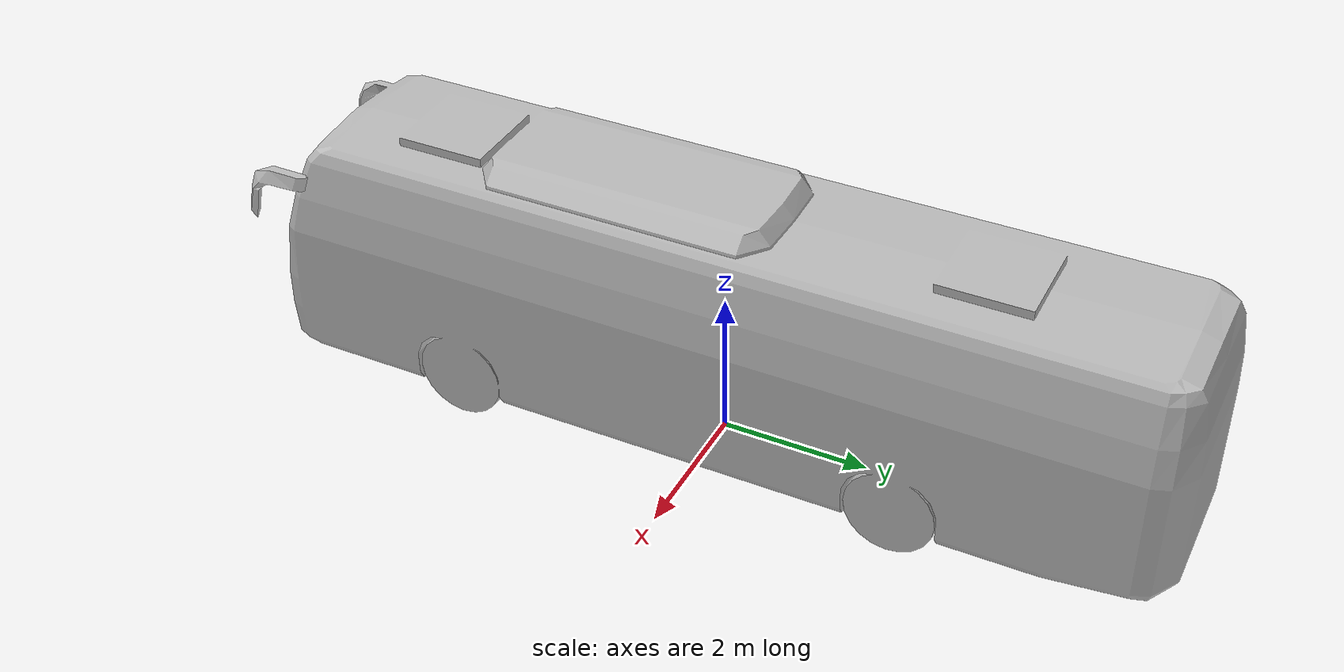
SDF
<?xml version="1.0" ?>
<sdf version="1.6">
  <model name="bus">
    <static>true</static>
    <link name="link">
      <collision name="collision">
        <geometry>
          <mesh>
            <scale>0.01 0.01 0.01</scale>
            <uri>model://bus/meshes/bus.obj</uri>
          </mesh>
        </geometry>
      </collision>
      <visual name="visual">
        <geometry>
          <mesh>
            <scale>0.01 0.01 0.01</scale>
            <uri>model://bus/meshes/bus.obj</uri>
          </mesh>
        </geometry>
      </visual>
    </link>
  </model>
</sdf>
